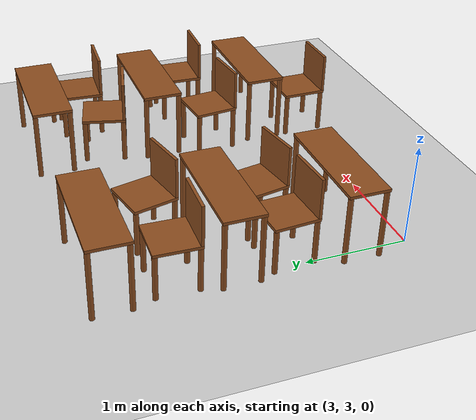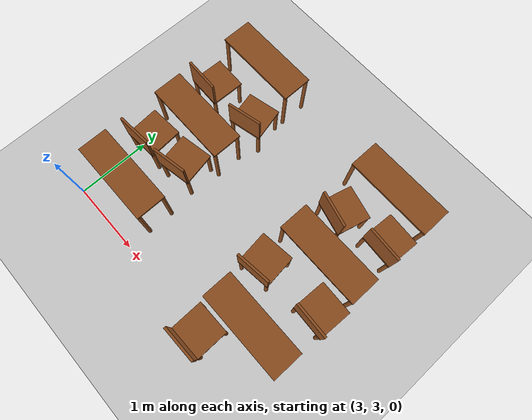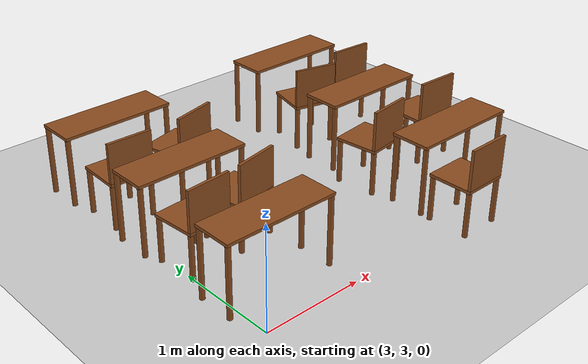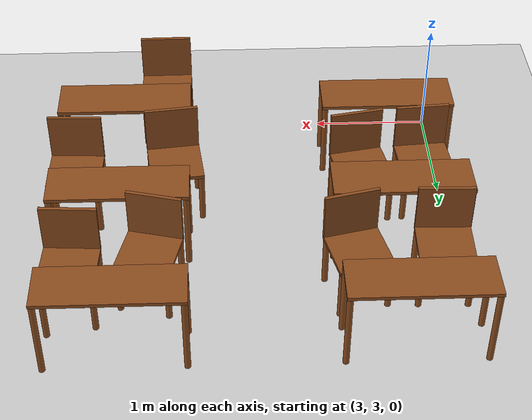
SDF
<sdf version="1.6">
 <world name="lecture_hall_real">
  <include><uri>model://ground_plane</uri></include>
  <include><uri>model://sun</uri></include>
  <model name="desk_1_3">
   <static>true</static>
   <pose>3.450 5.800 0 0 0 0</pose>
   <link name="link">
    <collision name="c_leg0">
     <pose>-0.550 -0.175 0.345 0 0 0</pose>
     <geometry><cylinder><radius>0.025</radius><length>0.690</length></cylinder></geometry>
    </collision>
    <visual name="v_leg0">
     <pose>-0.550 -0.175 0.345 0 0 0</pose>
     <geometry><cylinder><radius>0.025</radius><length>0.690</length></cylinder></geometry>
     <material><ambient>0.45 0.25 0.1 1</ambient><diffuse>0.55 0.3 0.12 1</diffuse></material>
    </visual>
    <collision name="c_leg1">
     <pose>-0.550 0.175 0.345 0 0 0</pose>
     <geometry><cylinder><radius>0.025</radius><length>0.690</length></cylinder></geometry>
    </collision>
    <visual name="v_leg1">
     <pose>-0.550 0.175 0.345 0 0 0</pose>
     <geometry><cylinder><radius>0.025</radius><length>0.690</length></cylinder></geometry>
     <material><ambient>0.45 0.25 0.1 1</ambient><diffuse>0.55 0.3 0.12 1</diffuse></material>
    </visual>
    <collision name="c_leg2">
     <pose>0.550 -0.175 0.345 0 0 0</pose>
     <geometry><cylinder><radius>0.025</radius><length>0.690</length></cylinder></geometry>
    </collision>
    <visual name="v_leg2">
     <pose>0.550 -0.175 0.345 0 0 0</pose>
     <geometry><cylinder><radius>0.025</radius><length>0.690</length></cylinder></geometry>
     <material><ambient>0.45 0.25 0.1 1</ambient><diffuse>0.55 0.3 0.12 1</diffuse></material>
    </visual>
    <collision name="c_leg3">
     <pose>0.550 0.175 0.345 0 0 0</pose>
     <geometry><cylinder><radius>0.025</radius><length>0.690</length></cylinder></geometry>
    </collision>
    <visual name="v_leg3">
     <pose>0.550 0.175 0.345 0 0 0</pose>
     <geometry><cylinder><radius>0.025</radius><length>0.690</length></cylinder></geometry>
     <material><ambient>0.45 0.25 0.1 1</ambient><diffuse>0.55 0.3 0.12 1</diffuse></material>
    </visual>
    <collision name="c_top">
     <pose>0.000 0.000 0.705 0 0 0</pose>
     <geometry><box><size>1.150 0.400 0.030</size></box></geometry>
    </collision>
    <visual name="v_top">
     <pose>0.000 0.000 0.705 0 0 0</pose>
     <geometry><box><size>1.150 0.400 0.030</size></box></geometry>
     <material><ambient>0.45 0.25 0.1 1</ambient><diffuse>0.55 0.3 0.12 1</diffuse></material>
    </visual>
   </link>
  </model>
  <model name="chair_1_3_1">
   <static>true</static>
   <pose>3.163 5.205 0 0 0 -0.029</pose>
   <link name="link">
    <collision name="c_leg0">
     <pose>-0.200 -0.200 0.225 0 0 0</pose>
     <geometry><cylinder><radius>0.025</radius><length>0.450</length></cylinder></geometry>
    </collision>
    <visual name="v_leg0">
     <pose>-0.200 -0.200 0.225 0 0 0</pose>
     <geometry><cylinder><radius>0.025</radius><length>0.450</length></cylinder></geometry>
     <material><ambient>0.45 0.25 0.1 1</ambient><diffuse>0.55 0.3 0.12 1</diffuse></material>
    </visual>
    <collision name="c_leg1">
     <pose>-0.200 0.200 0.225 0 0 0</pose>
     <geometry><cylinder><radius>0.025</radius><length>0.450</length></cylinder></geometry>
    </collision>
    <visual name="v_leg1">
     <pose>-0.200 0.200 0.225 0 0 0</pose>
     <geometry><cylinder><radius>0.025</radius><length>0.450</length></cylinder></geometry>
     <material><ambient>0.45 0.25 0.1 1</ambient><diffuse>0.55 0.3 0.12 1</diffuse></material>
    </visual>
    <collision name="c_leg2">
     <pose>0.200 -0.200 0.225 0 0 0</pose>
     <geometry><cylinder><radius>0.025</radius><length>0.450</length></cylinder></geometry>
    </collision>
    <visual name="v_leg2">
     <pose>0.200 -0.200 0.225 0 0 0</pose>
     <geometry><cylinder><radius>0.025</radius><length>0.450</length></cylinder></geometry>
     <material><ambient>0.45 0.25 0.1 1</ambient><diffuse>0.55 0.3 0.12 1</diffuse></material>
    </visual>
    <collision name="c_leg3">
     <pose>0.200 0.200 0.225 0 0 0</pose>
     <geometry><cylinder><radius>0.025</radius><length>0.450</length></cylinder></geometry>
    </collision>
    <visual name="v_leg3">
     <pose>0.200 0.200 0.225 0 0 0</pose>
     <geometry><cylinder><radius>0.025</radius><length>0.450</length></cylinder></geometry>
     <material><ambient>0.45 0.25 0.1 1</ambient><diffuse>0.55 0.3 0.12 1</diffuse></material>
    </visual>
    <collision name="c_seat">
     <pose>0.000 0.000 0.465 0 0 0</pose>
     <geometry><box><size>0.450 0.450 0.030</size></box></geometry>
    </collision>
    <visual name="v_seat">
     <pose>0.000 0.000 0.465 0 0 0</pose>
     <geometry><box><size>0.450 0.450 0.030</size></box></geometry>
     <material><ambient>0.45 0.25 0.1 1</ambient><diffuse>0.55 0.3 0.12 1</diffuse></material>
    </visual>
    <collision name="c_back">
     <pose>0.000 -0.210 0.680 0 0 0</pose>
     <geometry><box><size>0.450 0.030 0.400</size></box></geometry>
    </collision>
    <visual name="v_back">
     <pose>0.000 -0.210 0.680 0 0 0</pose>
     <geometry><box><size>0.450 0.030 0.400</size></box></geometry>
     <material><ambient>0.45 0.25 0.1 1</ambient><diffuse>0.55 0.3 0.12 1</diffuse></material>
    </visual>
   </link>
  </model>
  <model name="chair_1_3_2">
   <static>true</static>
   <pose>3.853 5.239 0 0 0 0.233</pose>
   <link name="link">
    <collision name="c_leg0">
     <pose>-0.200 -0.200 0.225 0 0 0</pose>
     <geometry><cylinder><radius>0.025</radius><length>0.450</length></cylinder></geometry>
    </collision>
    <visual name="v_leg0">
     <pose>-0.200 -0.200 0.225 0 0 0</pose>
     <geometry><cylinder><radius>0.025</radius><length>0.450</length></cylinder></geometry>
     <material><ambient>0.45 0.25 0.1 1</ambient><diffuse>0.55 0.3 0.12 1</diffuse></material>
    </visual>
    <collision name="c_leg1">
     <pose>-0.200 0.200 0.225 0 0 0</pose>
     <geometry><cylinder><radius>0.025</radius><length>0.450</length></cylinder></geometry>
    </collision>
    <visual name="v_leg1">
     <pose>-0.200 0.200 0.225 0 0 0</pose>
     <geometry><cylinder><radius>0.025</radius><length>0.450</length></cylinder></geometry>
     <material><ambient>0.45 0.25 0.1 1</ambient><diffuse>0.55 0.3 0.12 1</diffuse></material>
    </visual>
    <collision name="c_leg2">
     <pose>0.200 -0.200 0.225 0 0 0</pose>
     <geometry><cylinder><radius>0.025</radius><length>0.450</length></cylinder></geometry>
    </collision>
    <visual name="v_leg2">
     <pose>0.200 -0.200 0.225 0 0 0</pose>
     <geometry><cylinder><radius>0.025</radius><length>0.450</length></cylinder></geometry>
     <material><ambient>0.45 0.25 0.1 1</ambient><diffuse>0.55 0.3 0.12 1</diffuse></material>
    </visual>
    <collision name="c_leg3">
     <pose>0.200 0.200 0.225 0 0 0</pose>
     <geometry><cylinder><radius>0.025</radius><length>0.450</length></cylinder></geometry>
    </collision>
    <visual name="v_leg3">
     <pose>0.200 0.200 0.225 0 0 0</pose>
     <geometry><cylinder><radius>0.025</radius><length>0.450</length></cylinder></geometry>
     <material><ambient>0.45 0.25 0.1 1</ambient><diffuse>0.55 0.3 0.12 1</diffuse></material>
    </visual>
    <collision name="c_seat">
     <pose>0.000 0.000 0.465 0 0 0</pose>
     <geometry><box><size>0.450 0.450 0.030</size></box></geometry>
    </collision>
    <visual name="v_seat">
     <pose>0.000 0.000 0.465 0 0 0</pose>
     <geometry><box><size>0.450 0.450 0.030</size></box></geometry>
     <material><ambient>0.45 0.25 0.1 1</ambient><diffuse>0.55 0.3 0.12 1</diffuse></material>
    </visual>
    <collision name="c_back">
     <pose>0.000 -0.210 0.680 0 0 0</pose>
     <geometry><box><size>0.450 0.030 0.400</size></box></geometry>
    </collision>
    <visual name="v_back">
     <pose>0.000 -0.210 0.680 0 0 0</pose>
     <geometry><box><size>0.450 0.030 0.400</size></box></geometry>
     <material><ambient>0.45 0.25 0.1 1</ambient><diffuse>0.55 0.3 0.12 1</diffuse></material>
    </visual>
   </link>
  </model>
  <model name="desk_1_4">
   <static>true</static>
   <pose>5.750 5.800 0 0 0 0</pose>
   <link name="link">
    <collision name="c_leg0">
     <pose>-0.550 -0.175 0.345 0 0 0</pose>
     <geometry><cylinder><radius>0.025</radius><length>0.690</length></cylinder></geometry>
    </collision>
    <visual name="v_leg0">
     <pose>-0.550 -0.175 0.345 0 0 0</pose>
     <geometry><cylinder><radius>0.025</radius><length>0.690</length></cylinder></geometry>
     <material><ambient>0.45 0.25 0.1 1</ambient><diffuse>0.55 0.3 0.12 1</diffuse></material>
    </visual>
    <collision name="c_leg1">
     <pose>-0.550 0.175 0.345 0 0 0</pose>
     <geometry><cylinder><radius>0.025</radius><length>0.690</length></cylinder></geometry>
    </collision>
    <visual name="v_leg1">
     <pose>-0.550 0.175 0.345 0 0 0</pose>
     <geometry><cylinder><radius>0.025</radius><length>0.690</length></cylinder></geometry>
     <material><ambient>0.45 0.25 0.1 1</ambient><diffuse>0.55 0.3 0.12 1</diffuse></material>
    </visual>
    <collision name="c_leg2">
     <pose>0.550 -0.175 0.345 0 0 0</pose>
     <geometry><cylinder><radius>0.025</radius><length>0.690</length></cylinder></geometry>
    </collision>
    <visual name="v_leg2">
     <pose>0.550 -0.175 0.345 0 0 0</pose>
     <geometry><cylinder><radius>0.025</radius><length>0.690</length></cylinder></geometry>
     <material><ambient>0.45 0.25 0.1 1</ambient><diffuse>0.55 0.3 0.12 1</diffuse></material>
    </visual>
    <collision name="c_leg3">
     <pose>0.550 0.175 0.345 0 0 0</pose>
     <geometry><cylinder><radius>0.025</radius><length>0.690</length></cylinder></geometry>
    </collision>
    <visual name="v_leg3">
     <pose>0.550 0.175 0.345 0 0 0</pose>
     <geometry><cylinder><radius>0.025</radius><length>0.690</length></cylinder></geometry>
     <material><ambient>0.45 0.25 0.1 1</ambient><diffuse>0.55 0.3 0.12 1</diffuse></material>
    </visual>
    <collision name="c_top">
     <pose>0.000 0.000 0.705 0 0 0</pose>
     <geometry><box><size>1.150 0.400 0.030</size></box></geometry>
    </collision>
    <visual name="v_top">
     <pose>0.000 0.000 0.705 0 0 0</pose>
     <geometry><box><size>1.150 0.400 0.030</size></box></geometry>
     <material><ambient>0.45 0.25 0.1 1</ambient><diffuse>0.55 0.3 0.12 1</diffuse></material>
    </visual>
   </link>
  </model>
  <model name="chair_1_4_1">
   <static>true</static>
   <pose>5.496 5.210 0 0 0 -0.248</pose>
   <link name="link">
    <collision name="c_leg0">
     <pose>-0.200 -0.200 0.225 0 0 0</pose>
     <geometry><cylinder><radius>0.025</radius><length>0.450</length></cylinder></geometry>
    </collision>
    <visual name="v_leg0">
     <pose>-0.200 -0.200 0.225 0 0 0</pose>
     <geometry><cylinder><radius>0.025</radius><length>0.450</length></cylinder></geometry>
     <material><ambient>0.45 0.25 0.1 1</ambient><diffuse>0.55 0.3 0.12 1</diffuse></material>
    </visual>
    <collision name="c_leg1">
     <pose>-0.200 0.200 0.225 0 0 0</pose>
     <geometry><cylinder><radius>0.025</radius><length>0.450</length></cylinder></geometry>
    </collision>
    <visual name="v_leg1">
     <pose>-0.200 0.200 0.225 0 0 0</pose>
     <geometry><cylinder><radius>0.025</radius><length>0.450</length></cylinder></geometry>
     <material><ambient>0.45 0.25 0.1 1</ambient><diffuse>0.55 0.3 0.12 1</diffuse></material>
    </visual>
    <collision name="c_leg2">
     <pose>0.200 -0.200 0.225 0 0 0</pose>
     <geometry><cylinder><radius>0.025</radius><length>0.450</length></cylinder></geometry>
    </collision>
    <visual name="v_leg2">
     <pose>0.200 -0.200 0.225 0 0 0</pose>
     <geometry><cylinder><radius>0.025</radius><length>0.450</length></cylinder></geometry>
     <material><ambient>0.45 0.25 0.1 1</ambient><diffuse>0.55 0.3 0.12 1</diffuse></material>
    </visual>
    <collision name="c_leg3">
     <pose>0.200 0.200 0.225 0 0 0</pose>
     <geometry><cylinder><radius>0.025</radius><length>0.450</length></cylinder></geometry>
    </collision>
    <visual name="v_leg3">
     <pose>0.200 0.200 0.225 0 0 0</pose>
     <geometry><cylinder><radius>0.025</radius><length>0.450</length></cylinder></geometry>
     <material><ambient>0.45 0.25 0.1 1</ambient><diffuse>0.55 0.3 0.12 1</diffuse></material>
    </visual>
    <collision name="c_seat">
     <pose>0.000 0.000 0.465 0 0 0</pose>
     <geometry><box><size>0.450 0.450 0.030</size></box></geometry>
    </collision>
    <visual name="v_seat">
     <pose>0.000 0.000 0.465 0 0 0</pose>
     <geometry><box><size>0.450 0.450 0.030</size></box></geometry>
     <material><ambient>0.45 0.25 0.1 1</ambient><diffuse>0.55 0.3 0.12 1</diffuse></material>
    </visual>
    <collision name="c_back">
     <pose>0.000 -0.210 0.680 0 0 0</pose>
     <geometry><box><size>0.450 0.030 0.400</size></box></geometry>
    </collision>
    <visual name="v_back">
     <pose>0.000 -0.210 0.680 0 0 0</pose>
     <geometry><box><size>0.450 0.030 0.400</size></box></geometry>
     <material><ambient>0.45 0.25 0.1 1</ambient><diffuse>0.55 0.3 0.12 1</diffuse></material>
    </visual>
   </link>
  </model>
  <model name="chair_1_4_2">
   <static>true</static>
   <pose>6.110 5.346 0 0 0 -0.062</pose>
   <link name="link">
    <collision name="c_leg0">
     <pose>-0.200 -0.200 0.225 0 0 0</pose>
     <geometry><cylinder><radius>0.025</radius><length>0.450</length></cylinder></geometry>
    </collision>
    <visual name="v_leg0">
     <pose>-0.200 -0.200 0.225 0 0 0</pose>
     <geometry><cylinder><radius>0.025</radius><length>0.450</length></cylinder></geometry>
     <material><ambient>0.45 0.25 0.1 1</ambient><diffuse>0.55 0.3 0.12 1</diffuse></material>
    </visual>
    <collision name="c_leg1">
     <pose>-0.200 0.200 0.225 0 0 0</pose>
     <geometry><cylinder><radius>0.025</radius><length>0.450</length></cylinder></geometry>
    </collision>
    <visual name="v_leg1">
     <pose>-0.200 0.200 0.225 0 0 0</pose>
     <geometry><cylinder><radius>0.025</radius><length>0.450</length></cylinder></geometry>
     <material><ambient>0.45 0.25 0.1 1</ambient><diffuse>0.55 0.3 0.12 1</diffuse></material>
    </visual>
    <collision name="c_leg2">
     <pose>0.200 -0.200 0.225 0 0 0</pose>
     <geometry><cylinder><radius>0.025</radius><length>0.450</length></cylinder></geometry>
    </collision>
    <visual name="v_leg2">
     <pose>0.200 -0.200 0.225 0 0 0</pose>
     <geometry><cylinder><radius>0.025</radius><length>0.450</length></cylinder></geometry>
     <material><ambient>0.45 0.25 0.1 1</ambient><diffuse>0.55 0.3 0.12 1</diffuse></material>
    </visual>
    <collision name="c_leg3">
     <pose>0.200 0.200 0.225 0 0 0</pose>
     <geometry><cylinder><radius>0.025</radius><length>0.450</length></cylinder></geometry>
    </collision>
    <visual name="v_leg3">
     <pose>0.200 0.200 0.225 0 0 0</pose>
     <geometry><cylinder><radius>0.025</radius><length>0.450</length></cylinder></geometry>
     <material><ambient>0.45 0.25 0.1 1</ambient><diffuse>0.55 0.3 0.12 1</diffuse></material>
    </visual>
    <collision name="c_seat">
     <pose>0.000 0.000 0.465 0 0 0</pose>
     <geometry><box><size>0.450 0.450 0.030</size></box></geometry>
    </collision>
    <visual name="v_seat">
     <pose>0.000 0.000 0.465 0 0 0</pose>
     <geometry><box><size>0.450 0.450 0.030</size></box></geometry>
     <material><ambient>0.45 0.25 0.1 1</ambient><diffuse>0.55 0.3 0.12 1</diffuse></material>
    </visual>
    <collision name="c_back">
     <pose>0.000 -0.210 0.680 0 0 0</pose>
     <geometry><box><size>0.450 0.030 0.400</size></box></geometry>
    </collision>
    <visual name="v_back">
     <pose>0.000 -0.210 0.680 0 0 0</pose>
     <geometry><box><size>0.450 0.030 0.400</size></box></geometry>
     <material><ambient>0.45 0.25 0.1 1</ambient><diffuse>0.55 0.3 0.12 1</diffuse></material>
    </visual>
   </link>
  </model>
  <model name="desk_2_3">
   <static>true</static>
   <pose>3.450 4.650 0 0 0 0</pose>
   <link name="link">
    <collision name="c_leg0">
     <pose>-0.550 -0.175 0.345 0 0 0</pose>
     <geometry><cylinder><radius>0.025</radius><length>0.690</length></cylinder></geometry>
    </collision>
    <visual name="v_leg0">
     <pose>-0.550 -0.175 0.345 0 0 0</pose>
     <geometry><cylinder><radius>0.025</radius><length>0.690</length></cylinder></geometry>
     <material><ambient>0.45 0.25 0.1 1</ambient><diffuse>0.55 0.3 0.12 1</diffuse></material>
    </visual>
    <collision name="c_leg1">
     <pose>-0.550 0.175 0.345 0 0 0</pose>
     <geometry><cylinder><radius>0.025</radius><length>0.690</length></cylinder></geometry>
    </collision>
    <visual name="v_leg1">
     <pose>-0.550 0.175 0.345 0 0 0</pose>
     <geometry><cylinder><radius>0.025</radius><length>0.690</length></cylinder></geometry>
     <material><ambient>0.45 0.25 0.1 1</ambient><diffuse>0.55 0.3 0.12 1</diffuse></material>
    </visual>
    <collision name="c_leg2">
     <pose>0.550 -0.175 0.345 0 0 0</pose>
     <geometry><cylinder><radius>0.025</radius><length>0.690</length></cylinder></geometry>
    </collision>
    <visual name="v_leg2">
     <pose>0.550 -0.175 0.345 0 0 0</pose>
     <geometry><cylinder><radius>0.025</radius><length>0.690</length></cylinder></geometry>
     <material><ambient>0.45 0.25 0.1 1</ambient><diffuse>0.55 0.3 0.12 1</diffuse></material>
    </visual>
    <collision name="c_leg3">
     <pose>0.550 0.175 0.345 0 0 0</pose>
     <geometry><cylinder><radius>0.025</radius><length>0.690</length></cylinder></geometry>
    </collision>
    <visual name="v_leg3">
     <pose>0.550 0.175 0.345 0 0 0</pose>
     <geometry><cylinder><radius>0.025</radius><length>0.690</length></cylinder></geometry>
     <material><ambient>0.45 0.25 0.1 1</ambient><diffuse>0.55 0.3 0.12 1</diffuse></material>
    </visual>
    <collision name="c_top">
     <pose>0.000 0.000 0.705 0 0 0</pose>
     <geometry><box><size>1.150 0.400 0.030</size></box></geometry>
    </collision>
    <visual name="v_top">
     <pose>0.000 0.000 0.705 0 0 0</pose>
     <geometry><box><size>1.150 0.400 0.030</size></box></geometry>
     <material><ambient>0.45 0.25 0.1 1</ambient><diffuse>0.55 0.3 0.12 1</diffuse></material>
    </visual>
   </link>
  </model>
  <model name="chair_2_3_1">
   <static>true</static>
   <pose>3.181 4.138 0 0 0 0.075</pose>
   <link name="link">
    <collision name="c_leg0">
     <pose>-0.200 -0.200 0.225 0 0 0</pose>
     <geometry><cylinder><radius>0.025</radius><length>0.450</length></cylinder></geometry>
    </collision>
    <visual name="v_leg0">
     <pose>-0.200 -0.200 0.225 0 0 0</pose>
     <geometry><cylinder><radius>0.025</radius><length>0.450</length></cylinder></geometry>
     <material><ambient>0.45 0.25 0.1 1</ambient><diffuse>0.55 0.3 0.12 1</diffuse></material>
    </visual>
    <collision name="c_leg1">
     <pose>-0.200 0.200 0.225 0 0 0</pose>
     <geometry><cylinder><radius>0.025</radius><length>0.450</length></cylinder></geometry>
    </collision>
    <visual name="v_leg1">
     <pose>-0.200 0.200 0.225 0 0 0</pose>
     <geometry><cylinder><radius>0.025</radius><length>0.450</length></cylinder></geometry>
     <material><ambient>0.45 0.25 0.1 1</ambient><diffuse>0.55 0.3 0.12 1</diffuse></material>
    </visual>
    <collision name="c_leg2">
     <pose>0.200 -0.200 0.225 0 0 0</pose>
     <geometry><cylinder><radius>0.025</radius><length>0.450</length></cylinder></geometry>
    </collision>
    <visual name="v_leg2">
     <pose>0.200 -0.200 0.225 0 0 0</pose>
     <geometry><cylinder><radius>0.025</radius><length>0.450</length></cylinder></geometry>
     <material><ambient>0.45 0.25 0.1 1</ambient><diffuse>0.55 0.3 0.12 1</diffuse></material>
    </visual>
    <collision name="c_leg3">
     <pose>0.200 0.200 0.225 0 0 0</pose>
     <geometry><cylinder><radius>0.025</radius><length>0.450</length></cylinder></geometry>
    </collision>
    <visual name="v_leg3">
     <pose>0.200 0.200 0.225 0 0 0</pose>
     <geometry><cylinder><radius>0.025</radius><length>0.450</length></cylinder></geometry>
     <material><ambient>0.45 0.25 0.1 1</ambient><diffuse>0.55 0.3 0.12 1</diffuse></material>
    </visual>
    <collision name="c_seat">
     <pose>0.000 0.000 0.465 0 0 0</pose>
     <geometry><box><size>0.450 0.450 0.030</size></box></geometry>
    </collision>
    <visual name="v_seat">
     <pose>0.000 0.000 0.465 0 0 0</pose>
     <geometry><box><size>0.450 0.450 0.030</size></box></geometry>
     <material><ambient>0.45 0.25 0.1 1</ambient><diffuse>0.55 0.3 0.12 1</diffuse></material>
    </visual>
    <collision name="c_back">
     <pose>0.000 -0.210 0.680 0 0 0</pose>
     <geometry><box><size>0.450 0.030 0.400</size></box></geometry>
    </collision>
    <visual name="v_back">
     <pose>0.000 -0.210 0.680 0 0 0</pose>
     <geometry><box><size>0.450 0.030 0.400</size></box></geometry>
     <material><ambient>0.45 0.25 0.1 1</ambient><diffuse>0.55 0.3 0.12 1</diffuse></material>
    </visual>
   </link>
  </model>
  <model name="chair_2_3_2">
   <static>true</static>
   <pose>3.725 4.204 0 0 0 0.188</pose>
   <link name="link">
    <collision name="c_leg0">
     <pose>-0.200 -0.200 0.225 0 0 0</pose>
     <geometry><cylinder><radius>0.025</radius><length>0.450</length></cylinder></geometry>
    </collision>
    <visual name="v_leg0">
     <pose>-0.200 -0.200 0.225 0 0 0</pose>
     <geometry><cylinder><radius>0.025</radius><length>0.450</length></cylinder></geometry>
     <material><ambient>0.45 0.25 0.1 1</ambient><diffuse>0.55 0.3 0.12 1</diffuse></material>
    </visual>
    <collision name="c_leg1">
     <pose>-0.200 0.200 0.225 0 0 0</pose>
     <geometry><cylinder><radius>0.025</radius><length>0.450</length></cylinder></geometry>
    </collision>
    <visual name="v_leg1">
     <pose>-0.200 0.200 0.225 0 0 0</pose>
     <geometry><cylinder><radius>0.025</radius><length>0.450</length></cylinder></geometry>
     <material><ambient>0.45 0.25 0.1 1</ambient><diffuse>0.55 0.3 0.12 1</diffuse></material>
    </visual>
    <collision name="c_leg2">
     <pose>0.200 -0.200 0.225 0 0 0</pose>
     <geometry><cylinder><radius>0.025</radius><length>0.450</length></cylinder></geometry>
    </collision>
    <visual name="v_leg2">
     <pose>0.200 -0.200 0.225 0 0 0</pose>
     <geometry><cylinder><radius>0.025</radius><length>0.450</length></cylinder></geometry>
     <material><ambient>0.45 0.25 0.1 1</ambient><diffuse>0.55 0.3 0.12 1</diffuse></material>
    </visual>
    <collision name="c_leg3">
     <pose>0.200 0.200 0.225 0 0 0</pose>
     <geometry><cylinder><radius>0.025</radius><length>0.450</length></cylinder></geometry>
    </collision>
    <visual name="v_leg3">
     <pose>0.200 0.200 0.225 0 0 0</pose>
     <geometry><cylinder><radius>0.025</radius><length>0.450</length></cylinder></geometry>
     <material><ambient>0.45 0.25 0.1 1</ambient><diffuse>0.55 0.3 0.12 1</diffuse></material>
    </visual>
    <collision name="c_seat">
     <pose>0.000 0.000 0.465 0 0 0</pose>
     <geometry><box><size>0.450 0.450 0.030</size></box></geometry>
    </collision>
    <visual name="v_seat">
     <pose>0.000 0.000 0.465 0 0 0</pose>
     <geometry><box><size>0.450 0.450 0.030</size></box></geometry>
     <material><ambient>0.45 0.25 0.1 1</ambient><diffuse>0.55 0.3 0.12 1</diffuse></material>
    </visual>
    <collision name="c_back">
     <pose>0.000 -0.210 0.680 0 0 0</pose>
     <geometry><box><size>0.450 0.030 0.400</size></box></geometry>
    </collision>
    <visual name="v_back">
     <pose>0.000 -0.210 0.680 0 0 0</pose>
     <geometry><box><size>0.450 0.030 0.400</size></box></geometry>
     <material><ambient>0.45 0.25 0.1 1</ambient><diffuse>0.55 0.3 0.12 1</diffuse></material>
    </visual>
   </link>
  </model>
  <model name="desk_2_4">
   <static>true</static>
   <pose>5.750 4.650 0 0 0 0</pose>
   <link name="link">
    <collision name="c_leg0">
     <pose>-0.550 -0.175 0.345 0 0 0</pose>
     <geometry><cylinder><radius>0.025</radius><length>0.690</length></cylinder></geometry>
    </collision>
    <visual name="v_leg0">
     <pose>-0.550 -0.175 0.345 0 0 0</pose>
     <geometry><cylinder><radius>0.025</radius><length>0.690</length></cylinder></geometry>
     <material><ambient>0.45 0.25 0.1 1</ambient><diffuse>0.55 0.3 0.12 1</diffuse></material>
    </visual>
    <collision name="c_leg1">
     <pose>-0.550 0.175 0.345 0 0 0</pose>
     <geometry><cylinder><radius>0.025</radius><length>0.690</length></cylinder></geometry>
    </collision>
    <visual name="v_leg1">
     <pose>-0.550 0.175 0.345 0 0 0</pose>
     <geometry><cylinder><radius>0.025</radius><length>0.690</length></cylinder></geometry>
     <material><ambient>0.45 0.25 0.1 1</ambient><diffuse>0.55 0.3 0.12 1</diffuse></material>
    </visual>
    <collision name="c_leg2">
     <pose>0.550 -0.175 0.345 0 0 0</pose>
     <geometry><cylinder><radius>0.025</radius><length>0.690</length></cylinder></geometry>
    </collision>
    <visual name="v_leg2">
     <pose>0.550 -0.175 0.345 0 0 0</pose>
     <geometry><cylinder><radius>0.025</radius><length>0.690</length></cylinder></geometry>
     <material><ambient>0.45 0.25 0.1 1</ambient><diffuse>0.55 0.3 0.12 1</diffuse></material>
    </visual>
    <collision name="c_leg3">
     <pose>0.550 0.175 0.345 0 0 0</pose>
     <geometry><cylinder><radius>0.025</radius><length>0.690</length></cylinder></geometry>
    </collision>
    <visual name="v_leg3">
     <pose>0.550 0.175 0.345 0 0 0</pose>
     <geometry><cylinder><radius>0.025</radius><length>0.690</length></cylinder></geometry>
     <material><ambient>0.45 0.25 0.1 1</ambient><diffuse>0.55 0.3 0.12 1</diffuse></material>
    </visual>
    <collision name="c_top">
     <pose>0.000 0.000 0.705 0 0 0</pose>
     <geometry><box><size>1.150 0.400 0.030</size></box></geometry>
    </collision>
    <visual name="v_top">
     <pose>0.000 0.000 0.705 0 0 0</pose>
     <geometry><box><size>1.150 0.400 0.030</size></box></geometry>
     <material><ambient>0.45 0.25 0.1 1</ambient><diffuse>0.55 0.3 0.12 1</diffuse></material>
    </visual>
   </link>
  </model>
  <model name="chair_2_4_1">
   <static>true</static>
   <pose>5.309 4.105 0 0 0 0.116</pose>
   <link name="link">
    <collision name="c_leg0">
     <pose>-0.200 -0.200 0.225 0 0 0</pose>
     <geometry><cylinder><radius>0.025</radius><length>0.450</length></cylinder></geometry>
    </collision>
    <visual name="v_leg0">
     <pose>-0.200 -0.200 0.225 0 0 0</pose>
     <geometry><cylinder><radius>0.025</radius><length>0.450</length></cylinder></geometry>
     <material><ambient>0.45 0.25 0.1 1</ambient><diffuse>0.55 0.3 0.12 1</diffuse></material>
    </visual>
    <collision name="c_leg1">
     <pose>-0.200 0.200 0.225 0 0 0</pose>
     <geometry><cylinder><radius>0.025</radius><length>0.450</length></cylinder></geometry>
    </collision>
    <visual name="v_leg1">
     <pose>-0.200 0.200 0.225 0 0 0</pose>
     <geometry><cylinder><radius>0.025</radius><length>0.450</length></cylinder></geometry>
     <material><ambient>0.45 0.25 0.1 1</ambient><diffuse>0.55 0.3 0.12 1</diffuse></material>
    </visual>
    <collision name="c_leg2">
     <pose>0.200 -0.200 0.225 0 0 0</pose>
     <geometry><cylinder><radius>0.025</radius><length>0.450</length></cylinder></geometry>
    </collision>
    <visual name="v_leg2">
     <pose>0.200 -0.200 0.225 0 0 0</pose>
     <geometry><cylinder><radius>0.025</radius><length>0.450</length></cylinder></geometry>
     <material><ambient>0.45 0.25 0.1 1</ambient><diffuse>0.55 0.3 0.12 1</diffuse></material>
    </visual>
    <collision name="c_leg3">
     <pose>0.200 0.200 0.225 0 0 0</pose>
     <geometry><cylinder><radius>0.025</radius><length>0.450</length></cylinder></geometry>
    </collision>
    <visual name="v_leg3">
     <pose>0.200 0.200 0.225 0 0 0</pose>
     <geometry><cylinder><radius>0.025</radius><length>0.450</length></cylinder></geometry>
     <material><ambient>0.45 0.25 0.1 1</ambient><diffuse>0.55 0.3 0.12 1</diffuse></material>
    </visual>
    <collision name="c_seat">
     <pose>0.000 0.000 0.465 0 0 0</pose>
     <geometry><box><size>0.450 0.450 0.030</size></box></geometry>
    </collision>
    <visual name="v_seat">
     <pose>0.000 0.000 0.465 0 0 0</pose>
     <geometry><box><size>0.450 0.450 0.030</size></box></geometry>
     <material><ambient>0.45 0.25 0.1 1</ambient><diffuse>0.55 0.3 0.12 1</diffuse></material>
    </visual>
    <collision name="c_back">
     <pose>0.000 -0.210 0.680 0 0 0</pose>
     <geometry><box><size>0.450 0.030 0.400</size></box></geometry>
    </collision>
    <visual name="v_back">
     <pose>0.000 -0.210 0.680 0 0 0</pose>
     <geometry><box><size>0.450 0.030 0.400</size></box></geometry>
     <material><ambient>0.45 0.25 0.1 1</ambient><diffuse>0.55 0.3 0.12 1</diffuse></material>
    </visual>
   </link>
  </model>
  <model name="chair_2_4_2">
   <static>true</static>
   <pose>6.151 4.195 0 0 0 -0.041</pose>
   <link name="link">
    <collision name="c_leg0">
     <pose>-0.200 -0.200 0.225 0 0 0</pose>
     <geometry><cylinder><radius>0.025</radius><length>0.450</length></cylinder></geometry>
    </collision>
    <visual name="v_leg0">
     <pose>-0.200 -0.200 0.225 0 0 0</pose>
     <geometry><cylinder><radius>0.025</radius><length>0.450</length></cylinder></geometry>
     <material><ambient>0.45 0.25 0.1 1</ambient><diffuse>0.55 0.3 0.12 1</diffuse></material>
    </visual>
    <collision name="c_leg1">
     <pose>-0.200 0.200 0.225 0 0 0</pose>
     <geometry><cylinder><radius>0.025</radius><length>0.450</length></cylinder></geometry>
    </collision>
    <visual name="v_leg1">
     <pose>-0.200 0.200 0.225 0 0 0</pose>
     <geometry><cylinder><radius>0.025</radius><length>0.450</length></cylinder></geometry>
     <material><ambient>0.45 0.25 0.1 1</ambient><diffuse>0.55 0.3 0.12 1</diffuse></material>
    </visual>
    <collision name="c_leg2">
     <pose>0.200 -0.200 0.225 0 0 0</pose>
     <geometry><cylinder><radius>0.025</radius><length>0.450</length></cylinder></geometry>
    </collision>
    <visual name="v_leg2">
     <pose>0.200 -0.200 0.225 0 0 0</pose>
     <geometry><cylinder><radius>0.025</radius><length>0.450</length></cylinder></geometry>
     <material><ambient>0.45 0.25 0.1 1</ambient><diffuse>0.55 0.3 0.12 1</diffuse></material>
    </visual>
    <collision name="c_leg3">
     <pose>0.200 0.200 0.225 0 0 0</pose>
     <geometry><cylinder><radius>0.025</radius><length>0.450</length></cylinder></geometry>
    </collision>
    <visual name="v_leg3">
     <pose>0.200 0.200 0.225 0 0 0</pose>
     <geometry><cylinder><radius>0.025</radius><length>0.450</length></cylinder></geometry>
     <material><ambient>0.45 0.25 0.1 1</ambient><diffuse>0.55 0.3 0.12 1</diffuse></material>
    </visual>
    <collision name="c_seat">
     <pose>0.000 0.000 0.465 0 0 0</pose>
     <geometry><box><size>0.450 0.450 0.030</size></box></geometry>
    </collision>
    <visual name="v_seat">
     <pose>0.000 0.000 0.465 0 0 0</pose>
     <geometry><box><size>0.450 0.450 0.030</size></box></geometry>
     <material><ambient>0.45 0.25 0.1 1</ambient><diffuse>0.55 0.3 0.12 1</diffuse></material>
    </visual>
    <collision name="c_back">
     <pose>0.000 -0.210 0.680 0 0 0</pose>
     <geometry><box><size>0.450 0.030 0.400</size></box></geometry>
    </collision>
    <visual name="v_back">
     <pose>0.000 -0.210 0.680 0 0 0</pose>
     <geometry><box><size>0.450 0.030 0.400</size></box></geometry>
     <material><ambient>0.45 0.25 0.1 1</ambient><diffuse>0.55 0.3 0.12 1</diffuse></material>
    </visual>
   </link>
  </model>
  <model name="desk_3_3">
   <static>true</static>
   <pose>3.450 3.500 0 0 0 0</pose>
   <link name="link">
    <collision name="c_leg0">
     <pose>-0.550 -0.175 0.345 0 0 0</pose>
     <geometry><cylinder><radius>0.025</radius><length>0.690</length></cylinder></geometry>
    </collision>
    <visual name="v_leg0">
     <pose>-0.550 -0.175 0.345 0 0 0</pose>
     <geometry><cylinder><radius>0.025</radius><length>0.690</length></cylinder></geometry>
     <material><ambient>0.45 0.25 0.1 1</ambient><diffuse>0.55 0.3 0.12 1</diffuse></material>
    </visual>
    <collision name="c_leg1">
     <pose>-0.550 0.175 0.345 0 0 0</pose>
     <geometry><cylinder><radius>0.025</radius><length>0.690</length></cylinder></geometry>
    </collision>
    <visual name="v_leg1">
     <pose>-0.550 0.175 0.345 0 0 0</pose>
     <geometry><cylinder><radius>0.025</radius><length>0.690</length></cylinder></geometry>
     <material><ambient>0.45 0.25 0.1 1</ambient><diffuse>0.55 0.3 0.12 1</diffuse></material>
    </visual>
    <collision name="c_leg2">
     <pose>0.550 -0.175 0.345 0 0 0</pose>
     <geometry><cylinder><radius>0.025</radius><length>0.690</length></cylinder></geometry>
    </collision>
    <visual name="v_leg2">
     <pose>0.550 -0.175 0.345 0 0 0</pose>
     <geometry><cylinder><radius>0.025</radius><length>0.690</length></cylinder></geometry>
     <material><ambient>0.45 0.25 0.1 1</ambient><diffuse>0.55 0.3 0.12 1</diffuse></material>
    </visual>
    <collision name="c_leg3">
     <pose>0.550 0.175 0.345 0 0 0</pose>
     <geometry><cylinder><radius>0.025</radius><length>0.690</length></cylinder></geometry>
    </collision>
    <visual name="v_leg3">
     <pose>0.550 0.175 0.345 0 0 0</pose>
     <geometry><cylinder><radius>0.025</radius><length>0.690</length></cylinder></geometry>
     <material><ambient>0.45 0.25 0.1 1</ambient><diffuse>0.55 0.3 0.12 1</diffuse></material>
    </visual>
    <collision name="c_top">
     <pose>0.000 0.000 0.705 0 0 0</pose>
     <geometry><box><size>1.150 0.400 0.030</size></box></geometry>
    </collision>
    <visual name="v_top">
     <pose>0.000 0.000 0.705 0 0 0</pose>
     <geometry><box><size>1.150 0.400 0.030</size></box></geometry>
     <material><ambient>0.45 0.25 0.1 1</ambient><diffuse>0.55 0.3 0.12 1</diffuse></material>
    </visual>
   </link>
  </model>
  <model name="desk_3_4">
   <static>true</static>
   <pose>5.750 3.500 0 0 0 0</pose>
   <link name="link">
    <collision name="c_leg0">
     <pose>-0.550 -0.175 0.345 0 0 0</pose>
     <geometry><cylinder><radius>0.025</radius><length>0.690</length></cylinder></geometry>
    </collision>
    <visual name="v_leg0">
     <pose>-0.550 -0.175 0.345 0 0 0</pose>
     <geometry><cylinder><radius>0.025</radius><length>0.690</length></cylinder></geometry>
     <material><ambient>0.45 0.25 0.1 1</ambient><diffuse>0.55 0.3 0.12 1</diffuse></material>
    </visual>
    <collision name="c_leg1">
     <pose>-0.550 0.175 0.345 0 0 0</pose>
     <geometry><cylinder><radius>0.025</radius><length>0.690</length></cylinder></geometry>
    </collision>
    <visual name="v_leg1">
     <pose>-0.550 0.175 0.345 0 0 0</pose>
     <geometry><cylinder><radius>0.025</radius><length>0.690</length></cylinder></geometry>
     <material><ambient>0.45 0.25 0.1 1</ambient><diffuse>0.55 0.3 0.12 1</diffuse></material>
    </visual>
    <collision name="c_leg2">
     <pose>0.550 -0.175 0.345 0 0 0</pose>
     <geometry><cylinder><radius>0.025</radius><length>0.690</length></cylinder></geometry>
    </collision>
    <visual name="v_leg2">
     <pose>0.550 -0.175 0.345 0 0 0</pose>
     <geometry><cylinder><radius>0.025</radius><length>0.690</length></cylinder></geometry>
     <material><ambient>0.45 0.25 0.1 1</ambient><diffuse>0.55 0.3 0.12 1</diffuse></material>
    </visual>
    <collision name="c_leg3">
     <pose>0.550 0.175 0.345 0 0 0</pose>
     <geometry><cylinder><radius>0.025</radius><length>0.690</length></cylinder></geometry>
    </collision>
    <visual name="v_leg3">
     <pose>0.550 0.175 0.345 0 0 0</pose>
     <geometry><cylinder><radius>0.025</radius><length>0.690</length></cylinder></geometry>
     <material><ambient>0.45 0.25 0.1 1</ambient><diffuse>0.55 0.3 0.12 1</diffuse></material>
    </visual>
    <collision name="c_top">
     <pose>0.000 0.000 0.705 0 0 0</pose>
     <geometry><box><size>1.150 0.400 0.030</size></box></geometry>
    </collision>
    <visual name="v_top">
     <pose>0.000 0.000 0.705 0 0 0</pose>
     <geometry><box><size>1.150 0.400 0.030</size></box></geometry>
     <material><ambient>0.45 0.25 0.1 1</ambient><diffuse>0.55 0.3 0.12 1</diffuse></material>
    </visual>
   </link>
  </model>
  <model name="chair_3_4_1">
   <static>true</static>
   <pose>5.402 3.022 0 0 0 0.011</pose>
   <link name="link">
    <collision name="c_leg0">
     <pose>-0.200 -0.200 0.225 0 0 0</pose>
     <geometry><cylinder><radius>0.025</radius><length>0.450</length></cylinder></geometry>
    </collision>
    <visual name="v_leg0">
     <pose>-0.200 -0.200 0.225 0 0 0</pose>
     <geometry><cylinder><radius>0.025</radius><length>0.450</length></cylinder></geometry>
     <material><ambient>0.45 0.25 0.1 1</ambient><diffuse>0.55 0.3 0.12 1</diffuse></material>
    </visual>
    <collision name="c_leg1">
     <pose>-0.200 0.200 0.225 0 0 0</pose>
     <geometry><cylinder><radius>0.025</radius><length>0.450</length></cylinder></geometry>
    </collision>
    <visual name="v_leg1">
     <pose>-0.200 0.200 0.225 0 0 0</pose>
     <geometry><cylinder><radius>0.025</radius><length>0.450</length></cylinder></geometry>
     <material><ambient>0.45 0.25 0.1 1</ambient><diffuse>0.55 0.3 0.12 1</diffuse></material>
    </visual>
    <collision name="c_leg2">
     <pose>0.200 -0.200 0.225 0 0 0</pose>
     <geometry><cylinder><radius>0.025</radius><length>0.450</length></cylinder></geometry>
    </collision>
    <visual name="v_leg2">
     <pose>0.200 -0.200 0.225 0 0 0</pose>
     <geometry><cylinder><radius>0.025</radius><length>0.450</length></cylinder></geometry>
     <material><ambient>0.45 0.25 0.1 1</ambient><diffuse>0.55 0.3 0.12 1</diffuse></material>
    </visual>
    <collision name="c_leg3">
     <pose>0.200 0.200 0.225 0 0 0</pose>
     <geometry><cylinder><radius>0.025</radius><length>0.450</length></cylinder></geometry>
    </collision>
    <visual name="v_leg3">
     <pose>0.200 0.200 0.225 0 0 0</pose>
     <geometry><cylinder><radius>0.025</radius><length>0.450</length></cylinder></geometry>
     <material><ambient>0.45 0.25 0.1 1</ambient><diffuse>0.55 0.3 0.12 1</diffuse></material>
    </visual>
    <collision name="c_seat">
     <pose>0.000 0.000 0.465 0 0 0</pose>
     <geometry><box><size>0.450 0.450 0.030</size></box></geometry>
    </collision>
    <visual name="v_seat">
     <pose>0.000 0.000 0.465 0 0 0</pose>
     <geometry><box><size>0.450 0.450 0.030</size></box></geometry>
     <material><ambient>0.45 0.25 0.1 1</ambient><diffuse>0.55 0.3 0.12 1</diffuse></material>
    </visual>
    <collision name="c_back">
     <pose>0.000 -0.210 0.680 0 0 0</pose>
     <geometry><box><size>0.450 0.030 0.400</size></box></geometry>
    </collision>
    <visual name="v_back">
     <pose>0.000 -0.210 0.680 0 0 0</pose>
     <geometry><box><size>0.450 0.030 0.400</size></box></geometry>
     <material><ambient>0.45 0.25 0.1 1</ambient><diffuse>0.55 0.3 0.12 1</diffuse></material>
    </visual>
   </link>
  </model>
 </world>
</sdf>
